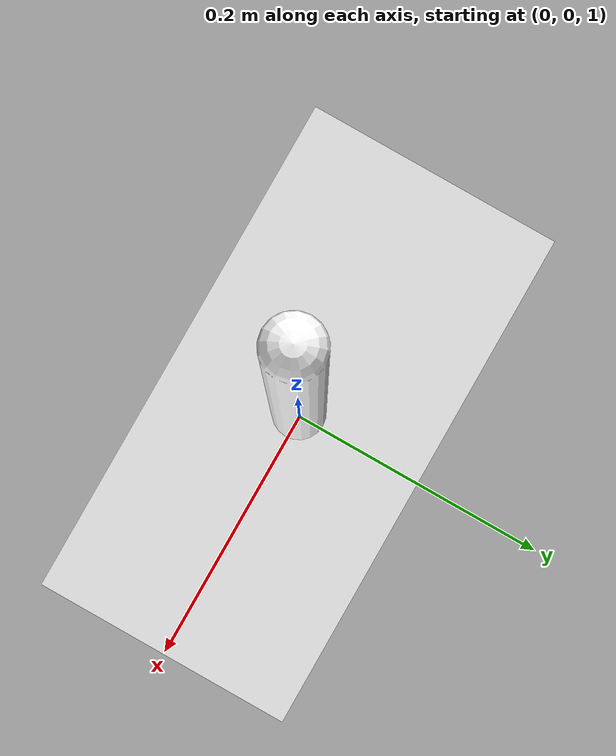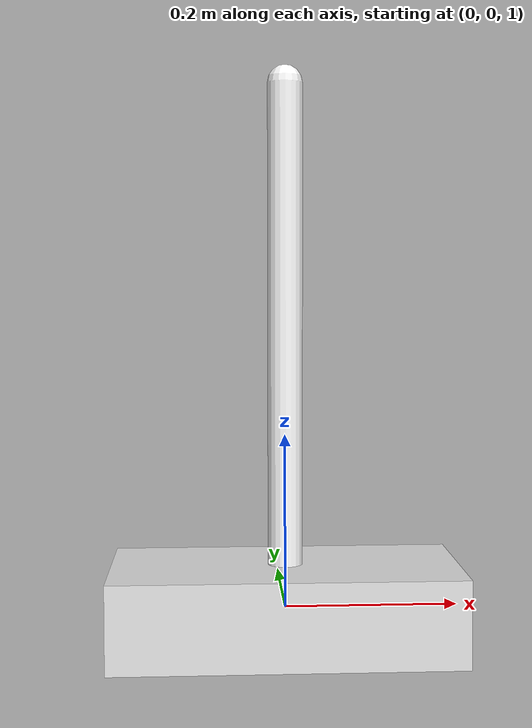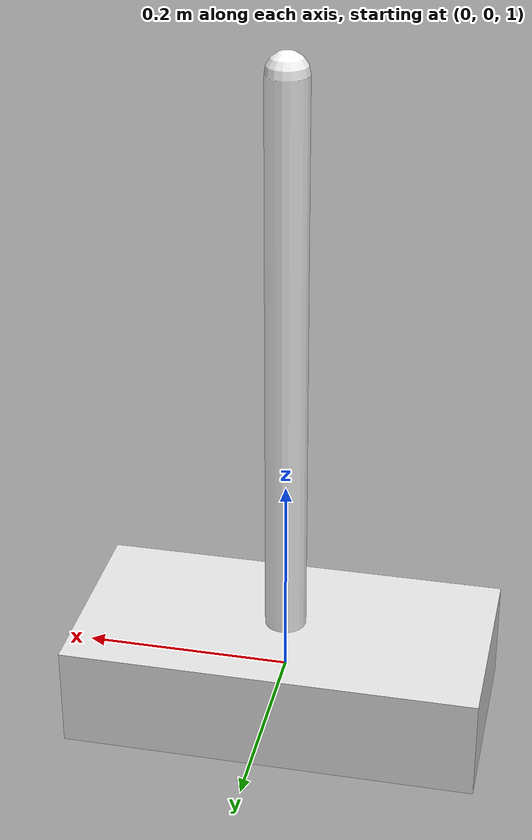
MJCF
<mujoco model="cartpole">
  <compiler autolimits="true"/>
  <option integrator="Euler" timestep="0.01">
    <flag constraint="disable"/>
  </option>
  <worldbody>
    <light pos="0 0 3"/>
    <body name="cart" pos="0 0 1">
      <joint name="slider" type="slide" axis="1 0 0"/>
      <geom type="box" size="0.2 0.1 0.05" mass="1" rgba="0.9 0.9 0.9 1" contype="0" conaffinity="0"/>
      <body name="pole" pos="0 0 0">
        <joint name="hinge" type="hinge" axis="0 1 0"/>
        <geom type="capsule" fromto="0 0 0 0 0 0.6" size="0.02" mass="0.1"
               rgba="1 1 1 1" contype="0" conaffinity="0"/>
      </body>
    </body>
  </worldbody>
  <actuator>
    <motor joint="slider" gear="10"/>
  </actuator>
</mujoco>
